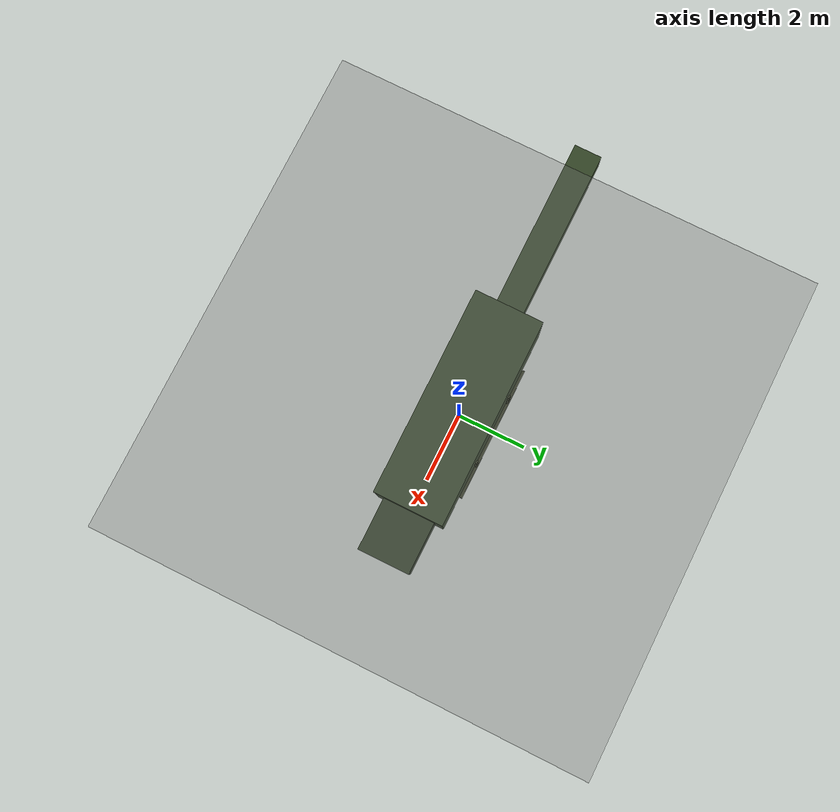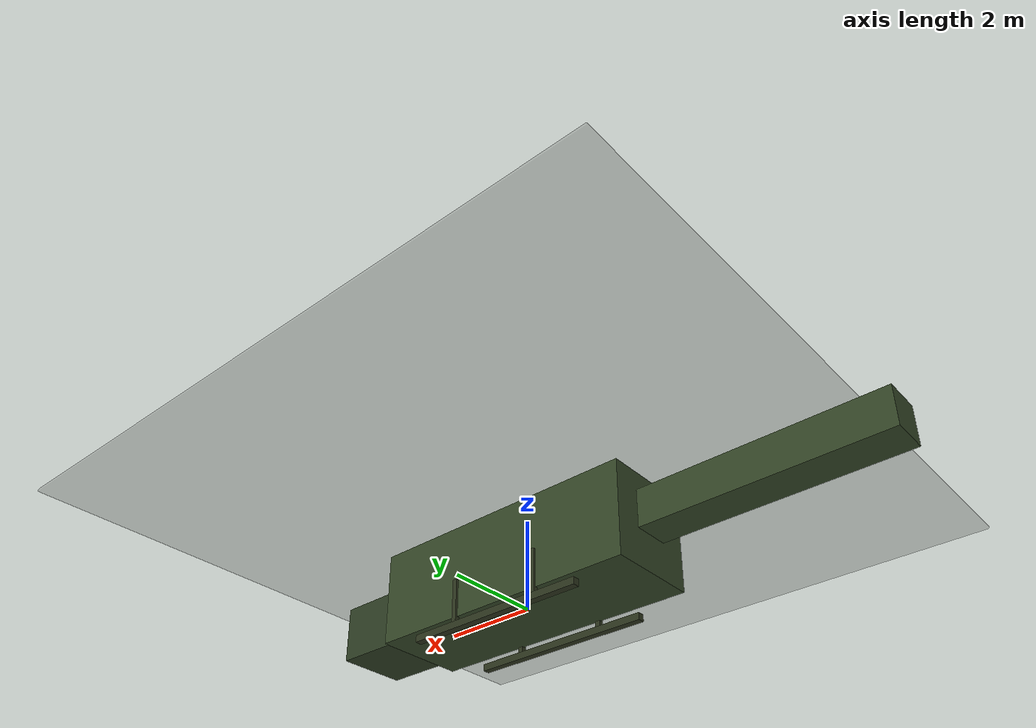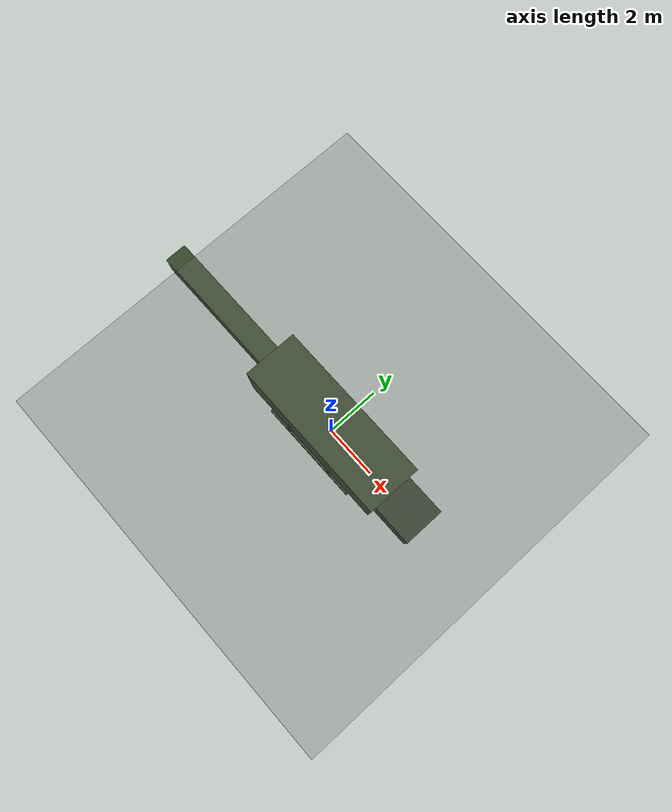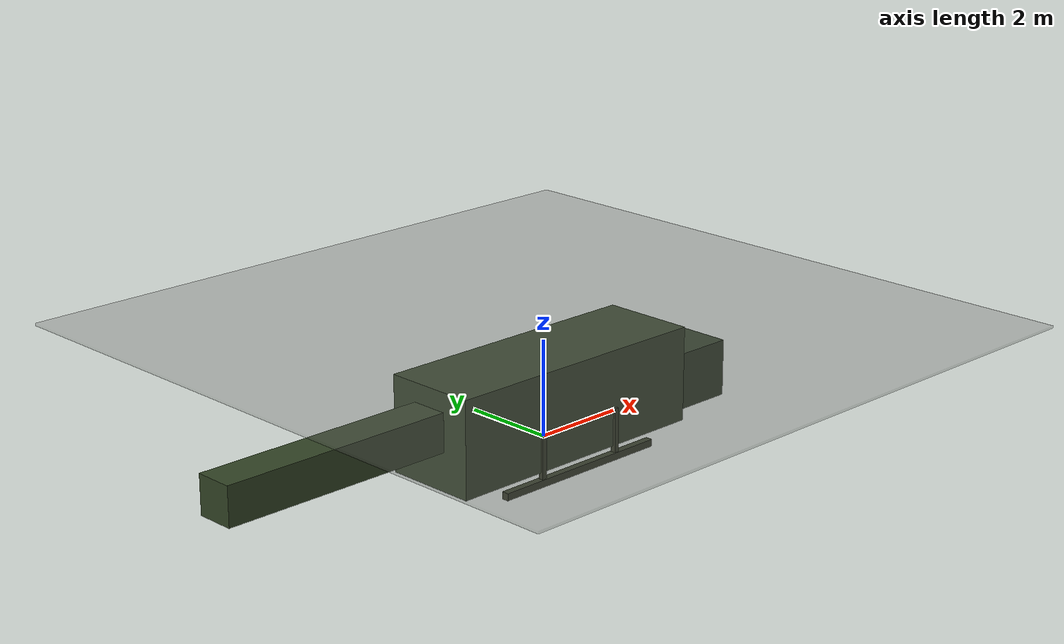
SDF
<?xml version="1.0" ?>
<sdf version="1.9">
  <model name="helicopter_mi24">
    <static>true</static>
    <pose>0 0 0.8 0 0 0</pose>
    <link name="body">
      <!-- Fuselage: 6.0 x 2.0 x 2.0m (main body) -->
      <visual name="fuselage">
        <geometry><box><size>6.0 2.0 2.0</size></box></geometry>
        <material>
          <ambient>0.15 0.22 0.12 1</ambient>
          <diffuse>0.20 0.27 0.15 1</diffuse>
        </material>
      </visual>
      <!-- Cockpit: 2.0 x 1.5 x 1.2m (front, slightly lower) -->
      <visual name="cockpit">
        <pose>3.5 0 -0.3 0 0 0</pose>
        <geometry><box><size>2.0 1.5 1.2</size></box></geometry>
        <material>
          <ambient>0.12 0.18 0.10 1</ambient>
          <diffuse>0.17 0.23 0.13 1</diffuse>
        </material>
      </visual>
      <!-- Tail boom: 5.0 x 0.8 x 0.8m (extending back) -->
      <visual name="tail_boom">
        <pose>-5.5 0 0.2 0 0 0</pose>
        <geometry><box><size>5.0 0.8 0.8</size></box></geometry>
        <material>
          <ambient>0.15 0.22 0.12 1</ambient>
          <diffuse>0.20 0.27 0.15 1</diffuse>
        </material>
      </visual>
      <!-- Main rotor disk: 14.0 x 14.0 x 0.05m flat disk (very thin) -->
      <visual name="rotor_disk">
        <pose>0 0 1.5 0 0 0</pose>
        <geometry><box><size>14.0 14.0 0.05</size></box></geometry>
        <material>
          <ambient>0.3 0.3 0.3 0.3</ambient>
          <diffuse>0.4 0.4 0.4 0.3</diffuse>
        </material>
      </visual>
      <!-- Landing skid left -->
      <visual name="skid_left">
        <pose>0 -1.0 -1.2 0 0 0</pose>
        <geometry><box><size>4.0 0.15 0.15</size></box></geometry>
        <material>
          <ambient>0.12 0.15 0.08 1</ambient>
          <diffuse>0.17 0.20 0.11 1</diffuse>
        </material>
      </visual>
      <!-- Landing skid right -->
      <visual name="skid_right">
        <pose>0 1.0 -1.2 0 0 0</pose>
        <geometry><box><size>4.0 0.15 0.15</size></box></geometry>
        <material>
          <ambient>0.12 0.15 0.08 1</ambient>
          <diffuse>0.17 0.20 0.11 1</diffuse>
        </material>
      </visual>
      <!-- Skid strut left front -->
      <visual name="strut_lf">
        <pose>1.0 -1.0 -0.7 0 0 0</pose>
        <geometry><box><size>0.1 0.1 1.0</size></box></geometry>
        <material>
          <ambient>0.12 0.15 0.08 1</ambient>
          <diffuse>0.17 0.20 0.11 1</diffuse>
        </material>
      </visual>
      <!-- Skid strut left rear -->
      <visual name="strut_lr">
        <pose>-1.0 -1.0 -0.7 0 0 0</pose>
        <geometry><box><size>0.1 0.1 1.0</size></box></geometry>
        <material>
          <ambient>0.12 0.15 0.08 1</ambient>
          <diffuse>0.17 0.20 0.11 1</diffuse>
        </material>
      </visual>
      <!-- Skid strut right front -->
      <visual name="strut_rf">
        <pose>1.0 1.0 -0.7 0 0 0</pose>
        <geometry><box><size>0.1 0.1 1.0</size></box></geometry>
        <material>
          <ambient>0.12 0.15 0.08 1</ambient>
          <diffuse>0.17 0.20 0.11 1</diffuse>
        </material>
      </visual>
      <!-- Skid strut right rear -->
      <visual name="strut_rr">
        <pose>-1.0 1.0 -0.7 0 0 0</pose>
        <geometry><box><size>0.1 0.1 1.0</size></box></geometry>
        <material>
          <ambient>0.12 0.15 0.08 1</ambient>
          <diffuse>0.17 0.20 0.11 1</diffuse>
        </material>
      </visual>
      <collision name="collision">
        <geometry><box><size>6.0 2.0 2.0</size></box></geometry>
      </collision>
    </link>
  </model>
</sdf>
